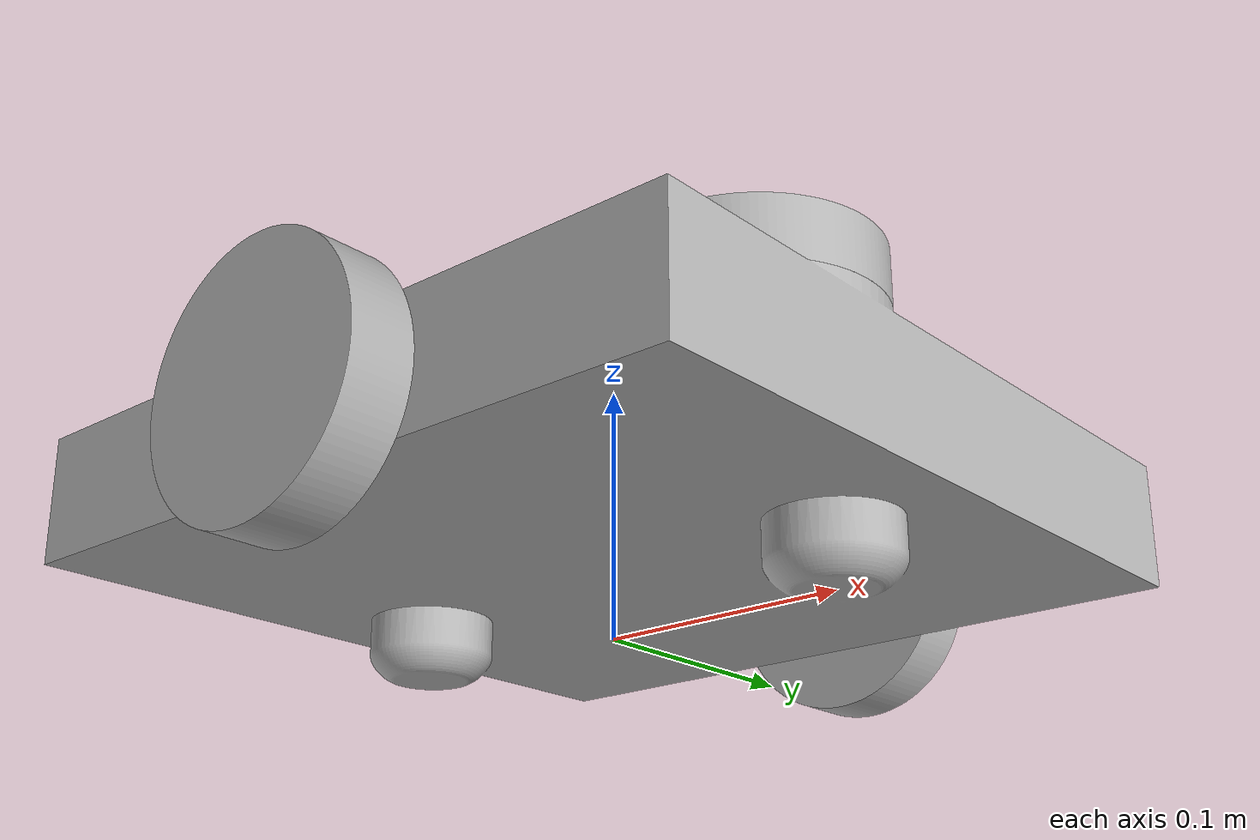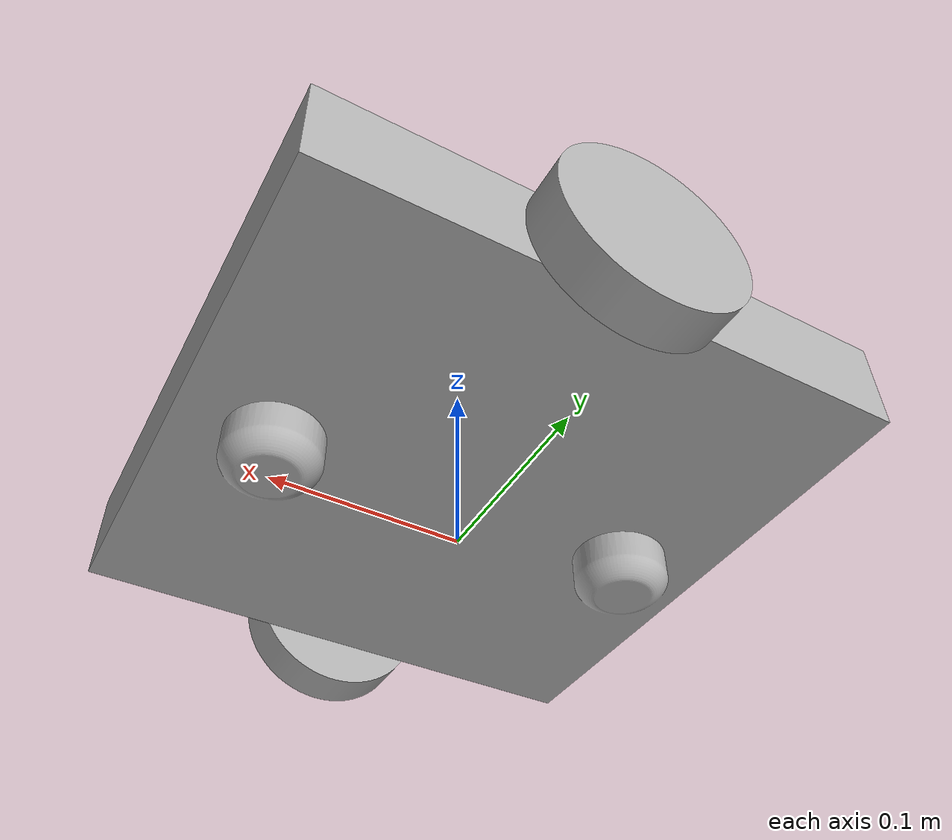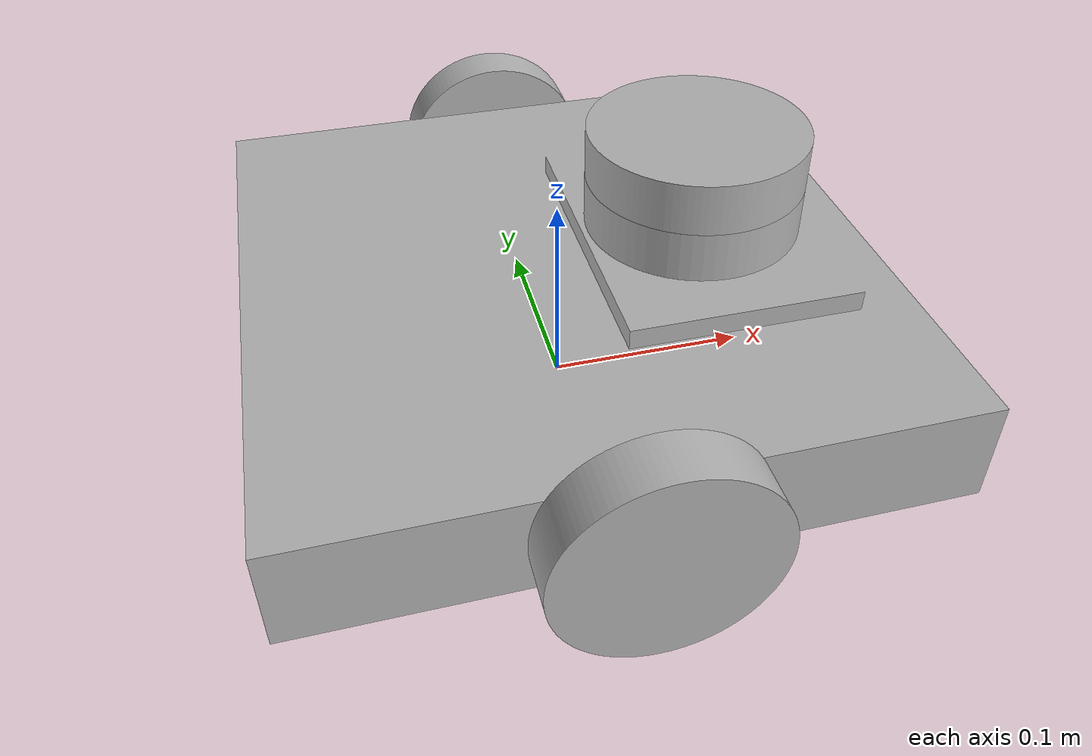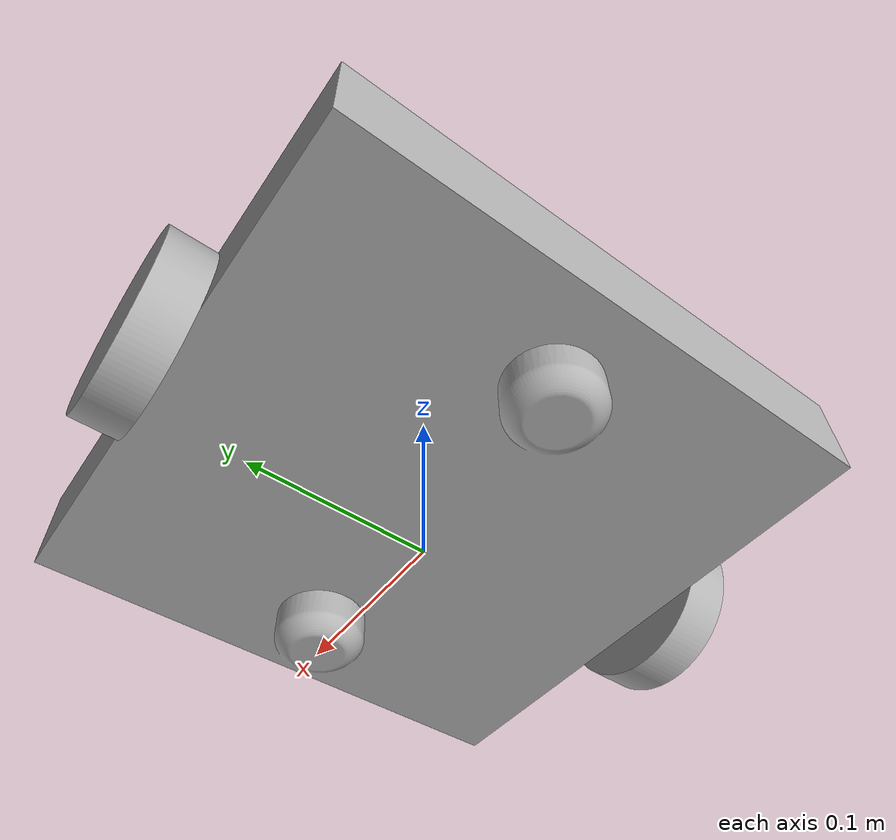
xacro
<?xml version="1.0" ?>
<robot name="master" xmlns:xacro="http://www.ros.org/wiki/xacro">

<xacro:include filename="$(find master_description)/urdf/materials.xacro" />
<xacro:include filename="$(find master_description)/urdf/master.trans" />
<xacro:include filename="$(find master_description)/urdf/master.gazebo" />
<link name="base_link">
  <inertial>
    <origin xyz="0.005178949637603836 -5.892718832279626e-05 0.052404415835844965" rpy="0 0 0"/>
    <mass value="39.02356370979957"/>
    <inertia ixx="0.281851" iyy="0.300358" izz="0.555794" ixy="0.000143" iyz="6.6e-05" ixz="-0.007587"/>
  </inertial>
  <visual>
    <origin xyz="0 0 0" rpy="0 0 0"/>
    <geometry>
      <mesh filename="package://master_description/meshes/base_link.stl" scale="0.001 0.001 0.001"/>
    </geometry>
    <material name="silver"/>
  </visual>
  <collision>
    <origin xyz="0 0 0" rpy="0 0 0"/>
    <geometry>
      <mesh filename="package://master_description/meshes/base_link.stl" scale="0.001 0.001 0.001"/>
    </geometry>
  </collision>
</link>

<link name="right_wheel_1">
  <inertial>
    <origin xyz="-1.1580046200244058e-17 -0.012500000000000011 6.938893903907228e-18" rpy="0 0 0"/>
    <mass value="1.541343895667492"/>
    <inertia ixx="0.001044" iyy="0.001927" izz="0.001044" ixy="-0.0" iyz="-0.0" ixz="-0.0"/>
  </inertial>
  <visual>
    <origin xyz="-0.0 0.15 -0.05" rpy="0 0 0"/>
    <geometry>
      <mesh filename="package://master_description/meshes/right_wheel_1.stl" scale="0.001 0.001 0.001"/>
    </geometry>
    <material name="silver"/>
  </visual>
  <collision>
    <origin xyz="-0.0 0.15 -0.05" rpy="0 0 0"/>
    <geometry>
      <mesh filename="package://master_description/meshes/right_wheel_1.stl" scale="0.001 0.001 0.001"/>
    </geometry>
  </collision>
</link>

<link name="left_wheel_1">
  <inertial>
    <origin xyz="-1.1580046200244058e-17 0.012499999999999983 6.938893903907228e-18" rpy="0 0 0"/>
    <mass value="1.541343895667492"/>
    <inertia ixx="0.001044" iyy="0.001927" izz="0.001044" ixy="-0.0" iyz="0.0" ixz="-0.0"/>
  </inertial>
  <visual>
    <origin xyz="-0.0 -0.15 -0.05" rpy="0 0 0"/>
    <geometry>
      <mesh filename="package://master_description/meshes/left_wheel_1.stl" scale="0.001 0.001 0.001"/>
    </geometry>
    <material name="silver"/>
  </visual>
  <collision>
    <origin xyz="-0.0 -0.15 -0.05" rpy="0 0 0"/>
    <geometry>
      <mesh filename="package://master_description/meshes/left_wheel_1.stl" scale="0.001 0.001 0.001"/>
    </geometry>
  </collision>
</link>

<link name="lidar_1">
  <inertial>
    <origin xyz="-2.276873536932733e-09 2.401412070382339e-07 0.012499999999999997" rpy="0 0 0"/>
    <mass value="1.6993316449734102"/>
    <inertia ixx="0.001259" iyy="0.001259" izz="0.002342" ixy="-0.0" iyz="-0.0" ixz="0.0"/>
  </inertial>
  <visual>
    <origin xyz="-0.067596 8e-05 -0.11" rpy="0 0 0"/>
    <geometry>
      <mesh filename="package://master_description/meshes/lidar_1.stl" scale="0.001 0.001 0.001"/>
    </geometry>
    <material name="silver"/>
  </visual>
  <collision>
    <origin xyz="-0.067596 8e-05 -0.11" rpy="0 0 0"/>
    <geometry>
      <mesh filename="package://master_description/meshes/lidar_1.stl" scale="0.001 0.001 0.001"/>
    </geometry>
  </collision>
</link>

<joint name="Revolute4" type="continuous">
  <origin xyz="0.0 -0.15 0.05" rpy="0 0 0"/>
  <parent link="base_link"/>
  <child link="right_wheel_1"/>
  <axis xyz="0.0 1.0 0.0"/>
</joint>

<joint name="Revolute5" type="continuous">
  <origin xyz="0.0 0.15 0.05" rpy="0 0 0"/>
  <parent link="base_link"/>
  <child link="left_wheel_1"/>
  <axis xyz="0.0 1.0 0.0"/>
</joint>

<joint name="Rigid6" type="fixed">
  <origin xyz="0.067596 -8e-05 0.11" rpy="0 0 0"/>
  <parent link="base_link"/>
  <child link="lidar_1"/>
</joint>

</robot>

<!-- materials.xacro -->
<robot name="master" xmlns:xacro="http://www.ros.org/wiki/xacro" >

<material name="silver">
  <color rgba="0.700 0.700 0.700 1.000"/>
</material>

</robot>

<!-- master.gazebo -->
<robot name="master" xmlns:xacro="http://www.ros.org/wiki/xacro" >

<xacro:property name="body_color" value="Gazebo/Silver" />

<gazebo>
  <plugin name="control" filename="libgazebo_ros_control.so"/>
</gazebo>

<gazebo reference="base_link">
  <material>${body_color}</material>
  <mu1>0.1</mu1>
  <mu2>0.1</mu2>
  <selfCollide>true</selfCollide>
  <gravity>true</gravity>
</gazebo>

<gazebo reference="right_wheel_1">
  <material>${body_color}</material>
  <mu1>1500</mu1>
  <mu2>1500</mu2>
  <selfCollide>true</selfCollide>
</gazebo>

<gazebo reference="left_wheel_1">
  <material>${body_color}</material>
  <mu1>1500</mu1>
  <mu2>1500</mu2>
  <selfCollide>true</selfCollide>
</gazebo>

<gazebo reference="lidar_1">
  <material>${body_color}</material>
  <mu1>0.2</mu1>
  <mu2>0.2</mu2>
  <selfCollide>true</selfCollide>
</gazebo>

<gazebo>
  <plugin name="differential_drive_controller" filename="libgazebo_ros_diff_drive.so">

    <!-- Plugin update rate in Hz -->
    <updateRate>100</updateRate>

    <!-- Name of left joint, defaults to `left_joint` -->
    <leftJoint>Revolute5</leftJoint>

    <!-- Name of right joint, defaults to `right_joint` -->
    <rightJoint>Revolute4</rightJoint>

    <!-- The distance from the center of one wheel to the other, in meters, defaults to 0.34 m -->
    <wheelSeparation>0.3000</wheelSeparation>

    <!-- Diameter of the wheels, in meters, defaults to 0.15 m -->
    <wheelDiameter>0.1</wheelDiameter>

    <!-- Wheel acceleration, in rad/s^2, defaults to 0.0 rad/s^2 -->
    <wheelAcceleration>1.0</wheelAcceleration>

    <!-- Maximum torque which the wheels can produce, in Nm, defaults to 5 Nm -->
    <wheelTorque>50</wheelTorque>

    <!-- Topic to receive geometry_msgs/Twist message commands, defaults to `cmd_vel` -->
    <commandTopic>cmd_vel</commandTopic>

    <!-- Topic to publish nav_msgs/Odometry messages, defaults to `odom` -->
    <odometryTopic>odom</odometryTopic>

    <!-- Odometry frame, defaults to `odom` -->
    <odometryFrame>odom</odometryFrame>

    <!-- Robot frame to calculate odometry from, defaults to `base_footprint` -->
    <robotBaseFrame>base_link</robotBaseFrame>

    <!-- Odometry source, 0 for ENCODER, 1 for WORLD, defaults to WORLD -->
    <odometrySource>1</odometrySource>

    <!-- Set to true to publish transforms for the wheel links, defaults to false -->
    <publishWheelTF>false</publishWheelTF>

    <!-- Set to true to publish transforms for the odometry, defaults to true -->
    <publishOdom>true</publishOdom>

    <!-- Set to true to publish sensor_msgs/JointState on /joint_states for the wheel joints, defaults to false -->
    <publishWheelJointState>false</publishWheelJointState>

    <!-- Set to true to swap right and left wheels, defaults to true -->
    <legacyMode>false</legacyMode>

     <rosDebugLevel>info</rosDebugLevel>
    <publishOdomTF>true</publishOdomTF>
    <tf_prefix></tf_prefix>
    <publishTf>true</publishTf>

  </plugin>
</gazebo>

 <!-- hokuyo -->
  <gazebo reference="lidar_1">
    <sensor type="ray" name="head_hokuyo_sensor">
      <pose>0 0 0 0 0 0</pose>
      <visualize>true</visualize>
      <update_rate>40</update_rate>
      <ray>
        <scan>
          <horizontal>
            <samples>720</samples>
            <resolution>1</resolution>
            <min_angle>-1.570796</min_angle>
            <max_angle>1.570796</max_angle>
          </horizontal>
        </scan>
        <range>
          <min>0.10</min>
          <max>30.0</max>
          <resolution>0.01</resolution>
        </range>
        <noise>
          <type>gaussian</type>
          <mean>0.0</mean>
          <stddev>0.01</stddev>
        </noise>
      </ray>
      <plugin name="gazebo_ros_head_hokuyo_controller" filename="libgazebo_ros_laser.so">
        <topicName>/scan</topicName>
        <frameName>lidar_1</frameName>
      </plugin>
    </sensor>
  </gazebo>

</robot>
